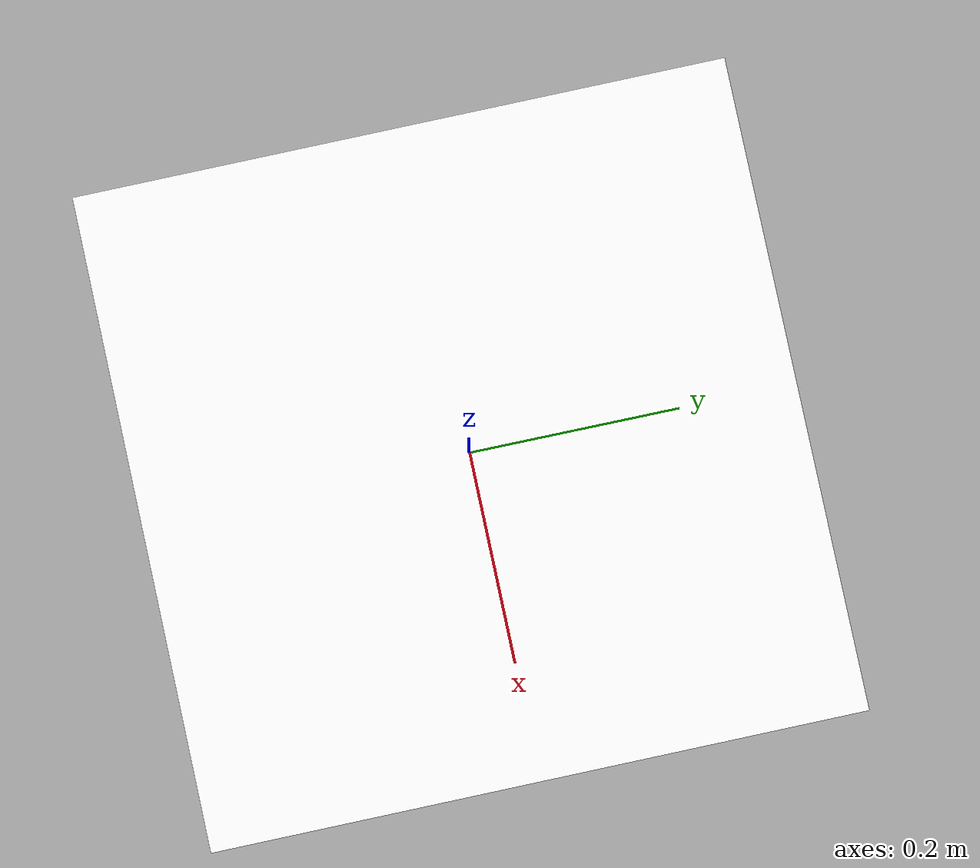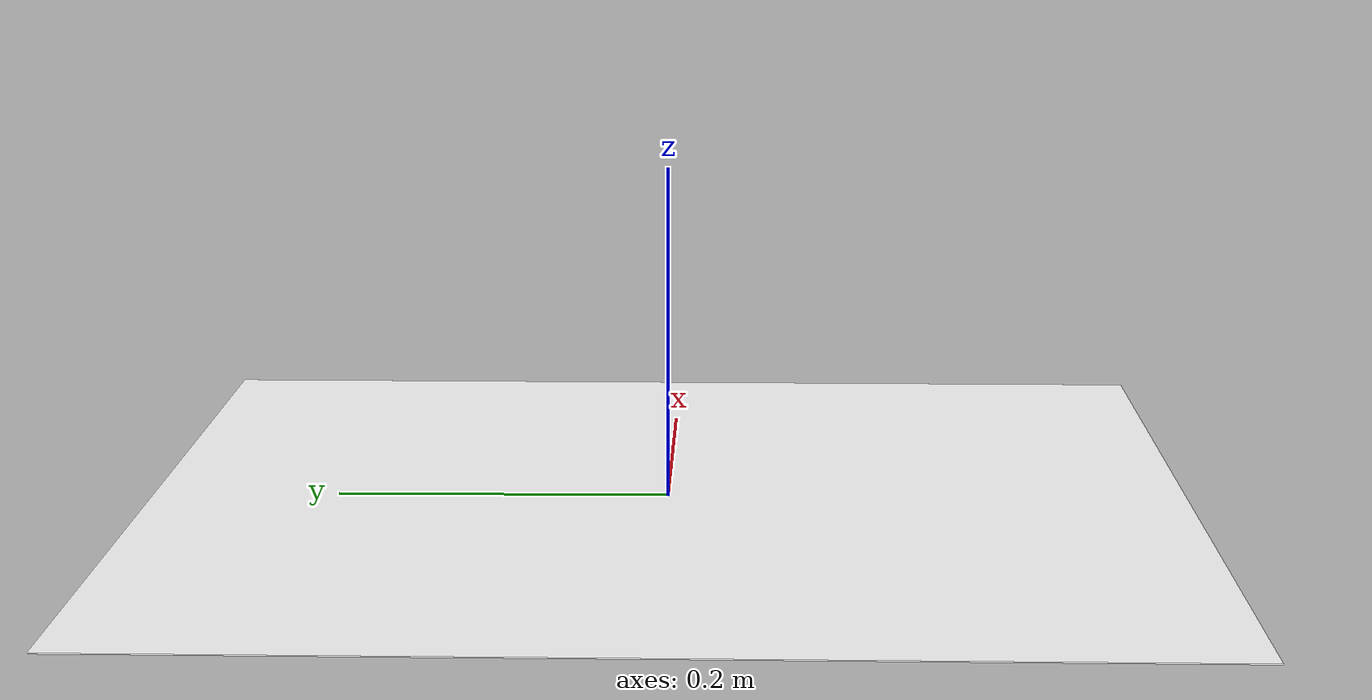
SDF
<?xml version="1.0" encoding="UTF-8"?>
<sdf version="1.9">
  <model name="dib_box_marker">
    <static>true</static>
    <pose>0 0 0 0 0 0</pose>
    <link name="base">
      <visual name="marker_visual">
        <pose>0 0 0 0 0 0</pose>
        <geometry>
          <plane>
            <normal>0 0 1</normal>
            <size>0.6241 0.6241</size>
          </plane>
        </geometry>
        <material>
          <diffuse>1 1 1 1</diffuse>
          <specular>0.2 0.2 0.2 1</specular>
          <pbr>
            <metal>
              <albedo_map>model://fractal_aruco_marker/marker.png</albedo_map>
            </metal>
          </pbr>
        </material>
      </visual>
    </link>
  </model>
</sdf>
